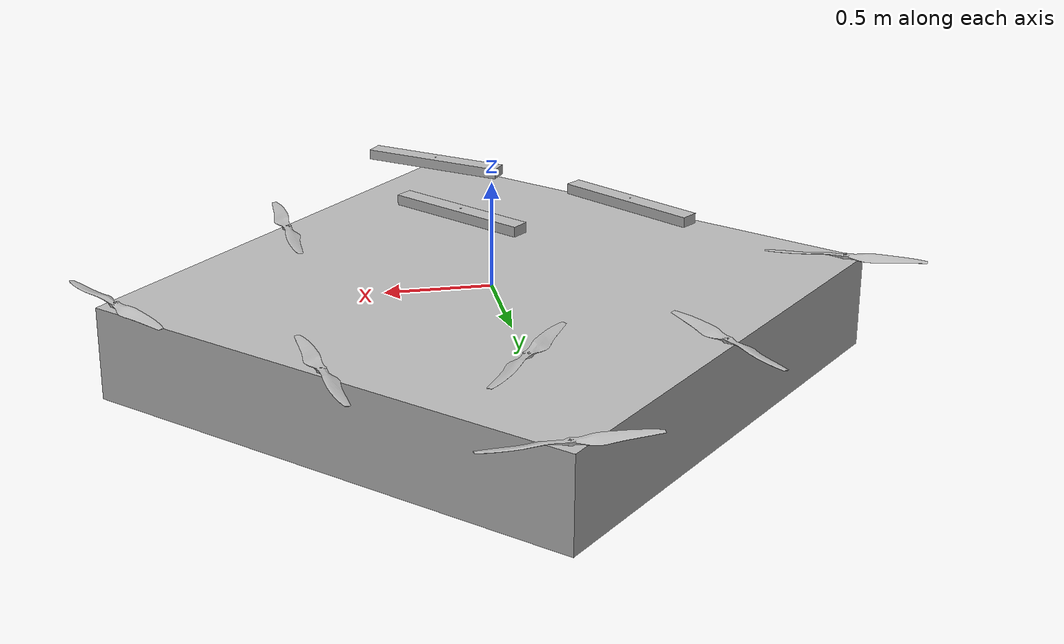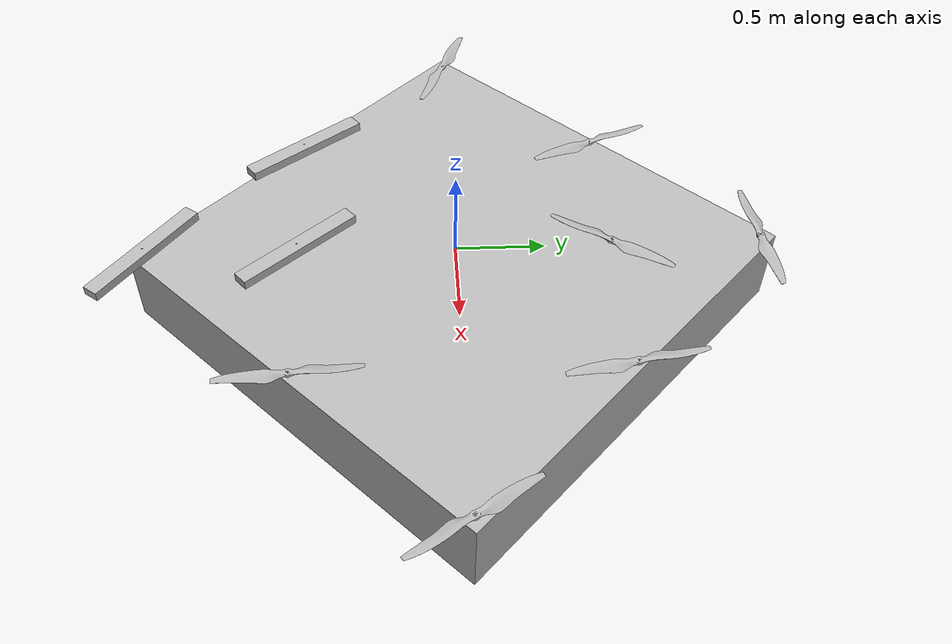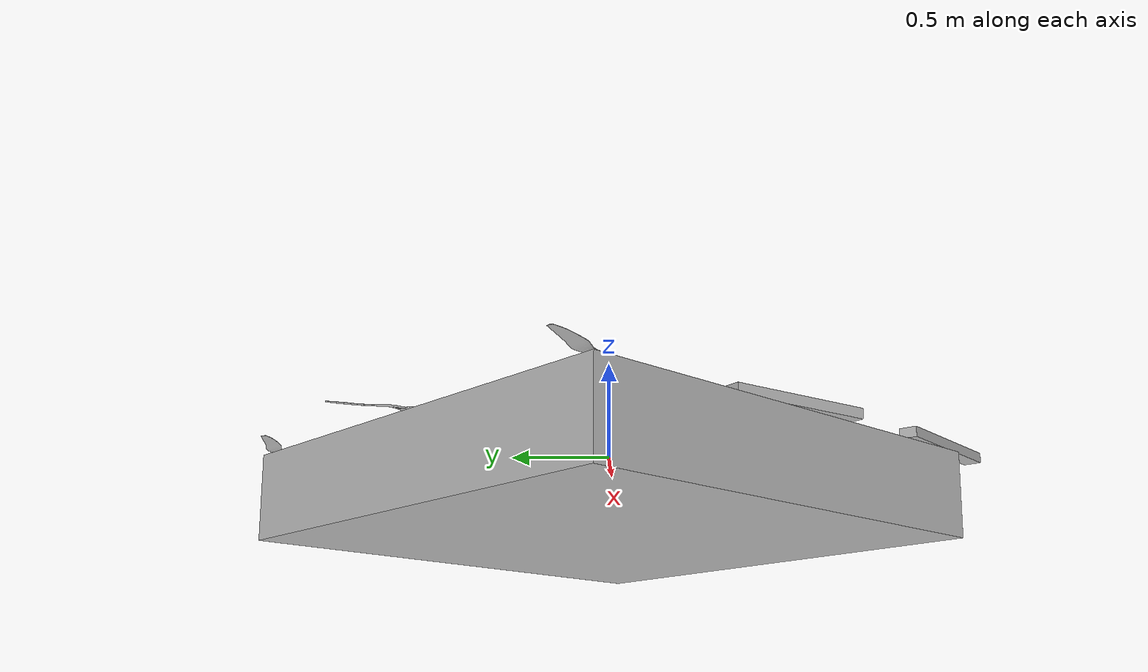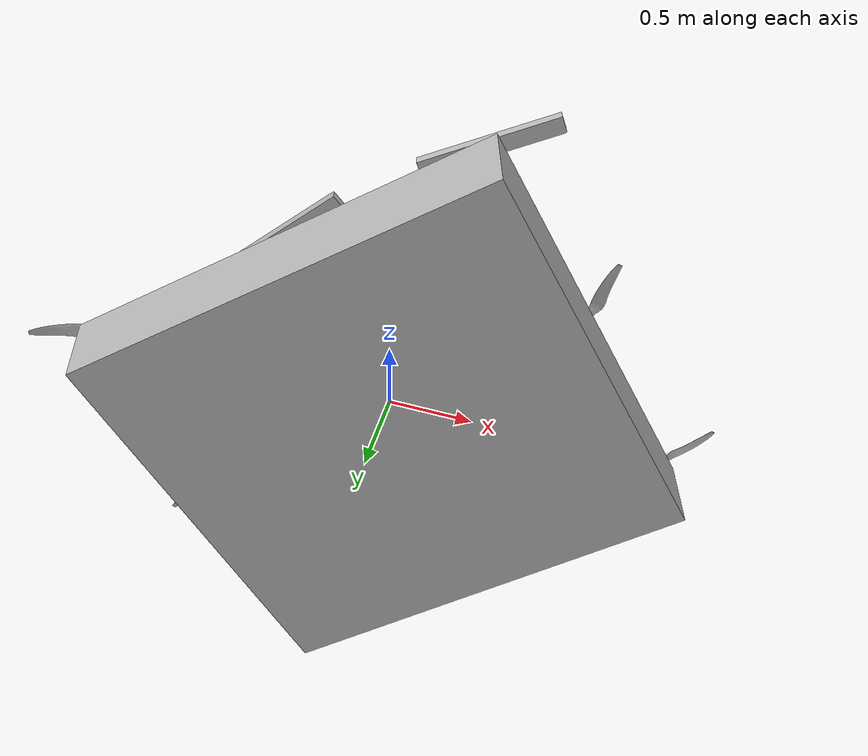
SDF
<sdf version='1.7'>
  <model name='swarm_carrier_v2'>
    <link name='base_link'>
      <inertial>
        <pose>-0.000265 -4.8e-05 -0.12408 0 -0 0</pose>
        <mass>15.007</mass>
        <inertia>
          <ixx>0.79653</ixx>
          <ixy>9.3966e-08</ixy>
          <ixz>-2.6473e-07</ixz>
          <iyy>0.69508</iyy>
          <iyz>-5.4034e-08</iyz>
          <izz>1.4565</izz>
        </inertia>
      </inertial>
      <collision name='base_link_collision'>
        <pose>0 0 0 0 -0 0</pose>
        <geometry>
          <mesh>
            <scale>1 1 1</scale>
            <uri>model://swarm_carrier_v2/meshes/base_link_col.STL</uri>
          </mesh>
        </geometry>
        <surface>
          <contact>
            <ode>
              <max_vel>100.0</max_vel>
              <min_depth>0.001</min_depth>
            </ode>
          </contact>
          <friction>
            <ode>
              <mu>100000.0</mu>
              <mu2>100000.0</mu2>
            </ode>
          </friction>
        </surface>
      </collision>
      <visual name='base_link_visual'>
        <pose>0 0 0 0 -0 0</pose>
        <geometry>
          <mesh>
            <scale>1 1 1</scale>
            <uri>model://swarm_carrier_v2/meshes/base_link.STL</uri>
          </mesh>
        </geometry>
      </visual>
    </link>
    <joint name='prop_10_joint' type='revolute'>
      <pose relative_to='base_link'>0 0.87065 0.031899 0 -0 2.5142</pose>
      <parent>base_link</parent>
      <child>prop_10</child>
      <axis>
        <xyz>0 0 1</xyz>
        <limit>
          <lower>-1e+16</lower>
          <upper>1e+16</upper>
          <effort>100</effort>
          <velocity>100</velocity>
        </limit>
        <dynamics>
          <damping>0.004</damping>
          <friction>0</friction>
          <spring_reference>0</spring_reference>
          <spring_stiffness>0</spring_stiffness>
        </dynamics>
      </axis>
    </joint>
    <link name='prop_10'>
      <pose relative_to='prop_10_joint'>0 0 0 0 -0 0</pose>
      <inertial>
        <pose>-0.51098 0.70497 -0.10275 0 -0 0</pose>
        <mass>0.24923</mass>
        <inertia>
          <ixx>14.896</ixx>
          <ixy>0.0069251</ixy>
          <ixz>0.00024738</ixz>
          <iyy>14.926</iyy>
          <iyz>0.00010383</iyz>
          <izz>28.858</izz>
        </inertia>
      </inertial>
      <collision name='prop_10_collision'>
        <pose>0 0 0 0 -0 0</pose>
        <geometry>
          <mesh>
            <scale>1 1 1</scale>
            <uri>model://swarm_carrier_v2/meshes/prop_10_col.STL</uri>
          </mesh>
        </geometry>
      </collision>
      <visual name='prop_10_visual'>
        <pose>0 0 0 0 -0 0</pose>
        <geometry>
          <mesh>
            <scale>1 1 1</scale>
            <uri>model://swarm_carrier_v2/meshes/prop_10.STL</uri>
          </mesh>
        </geometry>
      </visual>
    </link>
    <joint name='prop_1_joint' type='revolute'>
      <pose relative_to='base_link'>1.7088 0 0.031899 0 -0 0.53812</pose>
      <parent>base_link</parent>
      <child>prop_1</child>
      <axis>
        <xyz>0 0 1</xyz>
        <limit>
          <lower>-1e+16</lower>
          <upper>1e+16</upper>
          <effort>100</effort>
          <velocity>100</velocity>
        </limit>
        <dynamics>
          <damping>0.004</damping>
          <friction>0</friction>
          <spring_reference>0</spring_reference>
          <spring_stiffness>0</spring_stiffness>
        </dynamics>
      </axis>
    </joint>
    <link name='prop_1'>
      <pose relative_to='prop_1_joint'>0 0 0 0 -0 0</pose>
      <inertial>
        <pose>0 -5e-06 0.002884 0 -0 0</pose>
        <mass>0.24923</mass>
        <inertia>
          <ixx>0.0072919</ixx>
          <ixy>0.00019978</ixy>
          <ixz>-1.1958e-11</ixz>
          <iyy>6.0017e-05</iyy>
          <iyz>1.5169e-09</iyz>
          <izz>0.0073408</izz>
        </inertia>
      </inertial>
      <collision name='prop_1_collision'>
        <pose>0 0 0 0 -0 0</pose>
        <geometry>
          <mesh>
            <scale>1 1 1</scale>
            <uri>model://swarm_carrier_v2/meshes/prop_1_col.STL</uri>
          </mesh>
        </geometry>
      </collision>
      <visual name='prop_1_visual'>
        <pose>0 0 0 0 -0 0</pose>
        <geometry>
          <mesh>
            <scale>1 1 1</scale>
            <uri>model://swarm_carrier_v2/meshes/prop_1.STL</uri>
          </mesh>
        </geometry>
      </visual>
    </link>
    <joint name='prop_2_joint' type='revolute'>
      <pose relative_to='base_link'>-1.7088 0 0.031899 0 -0 1.1627</pose>
      <parent>base_link</parent>
      <child>prop_2</child>
      <axis>
        <xyz>0 0 1</xyz>
        <limit>
          <lower>-1e+16</lower>
          <upper>1e+16</upper>
          <effort>100</effort>
          <velocity>100</velocity>
        </limit>
        <dynamics>
          <damping>0.004</damping>
          <friction>0</friction>
          <spring_reference>0</spring_reference>
          <spring_stiffness>0</spring_stiffness>
        </dynamics>
      </axis>
    </joint>
    <link name='prop_2'>
      <pose relative_to='prop_2_joint'>0 0 0 0 -0 0</pose>
      <inertial>
        <pose>0 -5e-06 0.002884 0 -0 0</pose>
        <mass>0.24923</mass>
        <inertia>
          <ixx>0.0072919</ixx>
          <ixy>0.00019978</ixy>
          <ixz>1.0345e-11</ixz>
          <iyy>6.0018e-05</iyy>
          <iyz>1.4659e-09</iyz>
          <izz>0.0073408</izz>
        </inertia>
      </inertial>
      <collision name='prop_2_collision'>
        <pose>0 0 0 0 -0 0</pose>
        <geometry>
          <mesh>
            <scale>1 1 1</scale>
            <uri>model://swarm_carrier_v2/meshes/prop_2_col.STL</uri>
          </mesh>
        </geometry>
      </collision>
      <visual name='prop_2_visual'>
        <pose>0 0 0 0 -0 0</pose>
        <geometry>
          <mesh>
            <scale>1 1 1</scale>
            <uri>model://swarm_carrier_v2/meshes/prop_2.STL</uri>
          </mesh>
        </geometry>
      </visual>
    </link>
    <joint name='prop_3_joint' type='revolute'>
      <pose relative_to='base_link'>0.87065 -0.87065 0.031899 0 0 -3.0451</pose>
      <parent>base_link</parent>
      <child>prop_3</child>
      <axis>
        <xyz>0 0 1</xyz>
        <limit>
          <lower>-1e+16</lower>
          <upper>1e+16</upper>
          <effort>100</effort>
          <velocity>100</velocity>
        </limit>
        <dynamics>
          <damping>0.004</damping>
          <friction>0</friction>
          <spring_reference>0</spring_reference>
          <spring_stiffness>0</spring_stiffness>
        </dynamics>
      </axis>
    </joint>
    <link name='prop_3'>
      <pose relative_to='prop_3_joint'>0 0 0 0 -0 0</pose>
      <inertial>
        <pose>-0 -2e-06 0.002884 0 -0 0</pose>
        <mass>0.24924</mass>
        <inertia>
          <ixx>0.0072919</ixx>
          <ixy>-0.00019976</ixy>
          <ixz>-7.4492e-11</ixz>
          <iyy>6.0015e-05</iyy>
          <iyz>-6.1128e-10</iyz>
          <izz>0.0073409</izz>
        </inertia>
      </inertial>
      <collision name='prop_3_collision'>
        <pose>0 0 0 0 -0 0</pose>
        <geometry>
          <mesh>
            <scale>1 1 1</scale>
            <uri>model://swarm_carrier_v2/meshes/prop_3_col.STL</uri>
          </mesh>
        </geometry>
      </collision>
      <visual name='prop_3_visual'>
        <pose>0 0 0 0 -0 0</pose>
        <geometry>
          <mesh>
            <scale>1 1 1</scale>
            <uri>model://swarm_carrier_v2/meshes/prop_3.STL</uri>
          </mesh>
        </geometry>
      </visual>
    </link>
    <joint name='prop_4_joint' type='revolute'>
      <pose relative_to='base_link'>-0.87065 -0.87065 0.031899 0 0 -2.4981</pose>
      <parent>base_link</parent>
      <child>prop_4</child>
      <axis>
        <xyz>0 0 1</xyz>
        <limit>
          <lower>-1e+16</lower>
          <upper>1e+16</upper>
          <effort>100</effort>
          <velocity>100</velocity>
        </limit>
        <dynamics>
          <damping>0.004</damping>
          <friction>0</friction>
          <spring_reference>0</spring_reference>
          <spring_stiffness>0</spring_stiffness>
        </dynamics>
      </axis>
    </joint>
    <link name='prop_4'>
      <pose relative_to='prop_4_joint'>0 0 0 0 -0 0</pose>
      <inertial>
        <pose>-1.2187 -0.17421 -0.10275 0 -0 0</pose>
        <mass>21.379</mass>
        <inertia>
          <ixx>14.927</ixx>
          <ixy>0.0026372</ixy>
          <ixz>0.00017228</ixz>
          <iyy>14.895</iyy>
          <iyz>-0.00020566</iyz>
          <izz>28.858</izz>
        </inertia>
      </inertial>
      <collision name='prop_4_collision'>
        <pose>0 0 0 0 -0 0</pose>
        <geometry>
          <mesh>
            <scale>1 1 1</scale>
            <uri>model://swarm_carrier_v2/meshes/prop_4_col.STL</uri>
          </mesh>
        </geometry>
      </collision>
      <visual name='prop_4_visual'>
        <pose>0 0 0 0 -0 0</pose>
        <geometry>
          <mesh>
            <scale>1 1 1</scale>
            <uri>model://swarm_carrier_v2/meshes/prop_4.STL</uri>
          </mesh>
        </geometry>
      </visual>
    </link>
    <joint name='prop_5_joint' type='revolute'>
      <pose relative_to='base_link'>0.87065 0.87065 0.031899 0 0 -2.952</pose>
      <parent>base_link</parent>
      <child>prop_5</child>
      <axis>
        <xyz>0 0 1</xyz>
        <limit>
          <lower>-1e+16</lower>
          <upper>1e+16</upper>
          <effort>100</effort>
          <velocity>100</velocity>
        </limit>
        <dynamics>
          <damping>0.004</damping>
          <friction>0</friction>
          <spring_reference>0</spring_reference>
          <spring_stiffness>0</spring_stiffness>
        </dynamics>
      </axis>
    </joint>
    <link name='prop_5'>
      <pose relative_to='prop_5_joint'>0 0 0 0 -0 0</pose>
      <inertial>
        <pose>-0 0 0.002884 0 -0 0</pose>
        <mass>0.24923</mass>
        <inertia>
          <ixx>0.0072919</ixx>
          <ixy>-0.00019976</ixy>
          <ixz>1.3989e-11</ixz>
          <iyy>6.0014e-05</iyy>
          <iyz>-6.0697e-11</iyz>
          <izz>0.0073408</izz>
        </inertia>
      </inertial>
      <collision name='prop_5_collision'>
        <pose>0 0 0 0 -0 0</pose>
        <geometry>
          <mesh>
            <scale>1 1 1</scale>
            <uri>model://swarm_carrier_v2/meshes/prop_5_col.STL</uri>
          </mesh>
        </geometry>
      </collision>
      <visual name='prop_5_visual'>
        <pose>0 0 0 0 -0 0</pose>
        <geometry>
          <mesh>
            <scale>1 1 1</scale>
            <uri>model://swarm_carrier_v2/meshes/prop_5.STL</uri>
          </mesh>
        </geometry>
      </visual>
    </link>
    <joint name='prop_6_joint' type='revolute'>
      <pose relative_to='base_link'>-0.87065 0.87065 0.031899 0 0 -2.7347</pose>
      <parent>base_link</parent>
      <child>prop_6</child>
      <axis>
        <xyz>0 0 1</xyz>
        <limit>
          <lower>-1e+16</lower>
          <upper>1e+16</upper>
          <effort>100</effort>
          <velocity>100</velocity>
        </limit>
        <dynamics>
          <damping>0.004</damping>
          <friction>0</friction>
          <spring_reference>0</spring_reference>
          <spring_stiffness>0</spring_stiffness>
        </dynamics>
      </axis>
    </joint>
    <link name='prop_6'>
      <pose relative_to='prop_6_joint'>0 0 0 0 -0 0</pose>
      <inertial>
        <pose>-0 0 0.002884 0 -0 0</pose>
        <mass>0.24923</mass>
        <inertia>
          <ixx>0.0072919</ixx>
          <ixy>-0.00019976</ixy>
          <ixz>1.4081e-11</ixz>
          <iyy>6.0014e-05</iyy>
          <iyz>-5.8528e-11</iyz>
          <izz>0.0073408</izz>
        </inertia>
      </inertial>
      <collision name='prop_6_collision'>
        <pose>0 0 0 0 -0 0</pose>
        <geometry>
          <mesh>
            <scale>1 1 1</scale>
            <uri>model://swarm_carrier_v2/meshes/prop_6_col.STL</uri>
          </mesh>
        </geometry>
      </collision>
      <visual name='prop_6_visual'>
        <pose>0 0 0 0 -0 0</pose>
        <geometry>
          <mesh>
            <scale>1 1 1</scale>
            <uri>model://swarm_carrier_v2/meshes/prop_6.STL</uri>
          </mesh>
        </geometry>
      </visual>
    </link>
    <joint name='prop_7_joint' type='revolute'>
      <pose relative_to='base_link'>0 1.7088 0.031899 0 -0 0.059525</pose>
      <parent>base_link</parent>
      <child>prop_7</child>
      <axis>
        <xyz>0 0 1</xyz>
        <limit>
          <lower>-1e+16</lower>
          <upper>1e+16</upper>
          <effort>100</effort>
          <velocity>100</velocity>
        </limit>
        <dynamics>
          <damping>0.004</damping>
          <friction>0</friction>
          <spring_reference>0</spring_reference>
          <spring_stiffness>0</spring_stiffness>
        </dynamics>
      </axis>
    </joint>
    <link name='prop_7'>
      <pose relative_to='prop_7_joint'>0 0 0 0 -0 0</pose>
      <inertial>
        <pose>5e-06 0 0.002884 0 -0 0</pose>
        <mass>0.24923</mass>
        <inertia>
          <ixx>6.0017e-05</ixx>
          <ixy>-0.00019978</ixy>
          <ixz>-1.6413e-09</ixz>
          <iyy>0.0072919</iyy>
          <iyz>-1.3553e-12</iyz>
          <izz>0.0073408</izz>
        </inertia>
      </inertial>
      <collision name='prop_7_collision'>
        <pose>0 0 0 0 -0 0</pose>
        <geometry>
          <mesh>
            <scale>1 1 1</scale>
            <uri>model://swarm_carrier_v2/meshes/prop_7_col.STL</uri>
          </mesh>
        </geometry>
      </collision>
      <visual name='prop_7_visual'>
        <pose>0 0 0 0 -0 0</pose>
        <geometry>
          <mesh>
            <scale>1 1 1</scale>
            <uri>model://swarm_carrier_v2/meshes/prop_7.STL</uri>
          </mesh>
        </geometry>
      </visual>
    </link>
    <joint name='prop_8_joint' type='revolute'>
      <pose relative_to='base_link'>0 -1.7088 0.031899 0 -0 0.92604</pose>
      <parent>base_link</parent>
      <child>prop_8</child>
      <axis>
        <xyz>0 0 1</xyz>
        <limit>
          <lower>-1e+16</lower>
          <upper>1e+16</upper>
          <effort>100</effort>
          <velocity>100</velocity>
        </limit>
        <dynamics>
          <damping>0.004</damping>
          <friction>0</friction>
          <spring_reference>0</spring_reference>
          <spring_stiffness>0</spring_stiffness>
        </dynamics>
      </axis>
    </joint>
    <link name='prop_8'>
      <pose relative_to='prop_8_joint'>0 0 0 0 -0 0</pose>
      <inertial>
        <pose>-0 -2e-06 0.002884 0 -0 0</pose>
        <mass>0.24923</mass>
        <inertia>
          <ixx>0.0072919</ixx>
          <ixy>0.00019978</ixy>
          <ixz>-1.6201e-10</ixz>
          <iyy>6.0018e-05</iyy>
          <iyz>2.4597e-09</iyz>
          <izz>0.0073408</izz>
        </inertia>
      </inertial>
      <collision name='prop_8_collision'>
        <pose>0 0 0 0 -0 0</pose>
        <geometry>
          <mesh>
            <scale>1 1 1</scale>
            <uri>model://swarm_carrier_v2/meshes/prop_8_col.STL</uri>
          </mesh>
        </geometry>
      </collision>
      <visual name='prop_8_visual'>
        <pose>0 0 0 0 -0 0</pose>
        <geometry>
          <mesh>
            <scale>1 1 1</scale>
            <uri>model://swarm_carrier_v2/meshes/prop_8.STL</uri>
          </mesh>
        </geometry>
      </visual>
    </link>
    <joint name='prop_9_joint' type='revolute'>
      <pose relative_to='base_link'>0 -0.87065 0.031899 0 -0 0.70876</pose>
      <parent>base_link</parent>
      <child>prop_9</child>
      <axis>
        <xyz>0 0 1</xyz>
        <limit>
          <lower>-1e+16</lower>
          <upper>1e+16</upper>
          <effort>100</effort>
          <velocity>100</velocity>
        </limit>
        <dynamics>
          <damping>0.004</damping>
          <friction>0</friction>
          <spring_reference>0</spring_reference>
          <spring_stiffness>0</spring_stiffness>
        </dynamics>
      </axis>
    </joint>
    <link name='prop_9'>
      <pose relative_to='prop_9_joint'>0 0 0 0 -0 0</pose>
      <inertial>
        <pose>0.56653 0.66107 -0.10275 0 -0 0</pose>
        <mass>0.24923</mass>
        <inertia>
          <ixx>14.927</ixx>
          <ixy>0.00051624</ixy>
          <ixz>-0.0001585</ixz>
          <iyy>14.895</iyy>
          <iyz>0.00021646</iyz>
          <izz>28.858</izz>
        </inertia>
      </inertial>
      <collision name='prop_9_collision'>
        <pose>0 0 0 0 -0 0</pose>
        <geometry>
          <mesh>
            <scale>1 1 1</scale>
            <uri>model://swarm_carrier_v2/meshes/prop_9_col.STL</uri>
          </mesh>
        </geometry>
      </collision>
      <visual name='prop_9_visual'>
        <pose>0 0 0 0 -0 0</pose>
        <geometry>
          <mesh>
            <scale>1 1 1</scale>
            <uri>model://swarm_carrier_v2/meshes/prop_9.STL</uri>
          </mesh>
        </geometry>
      </visual>
    </link>
  </model>
</sdf>
